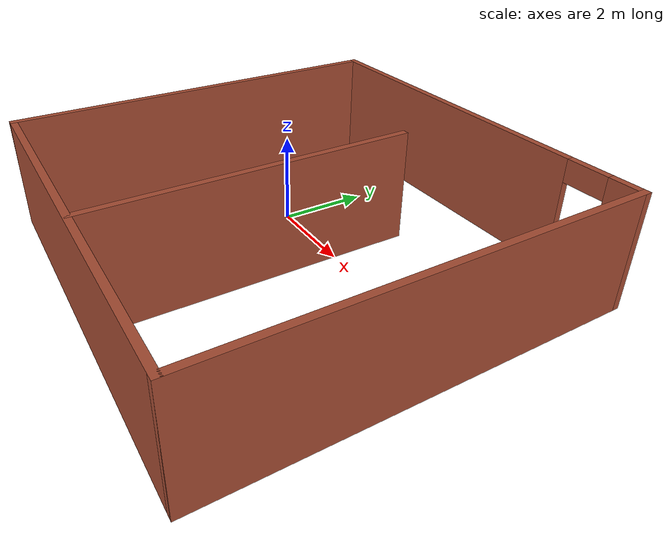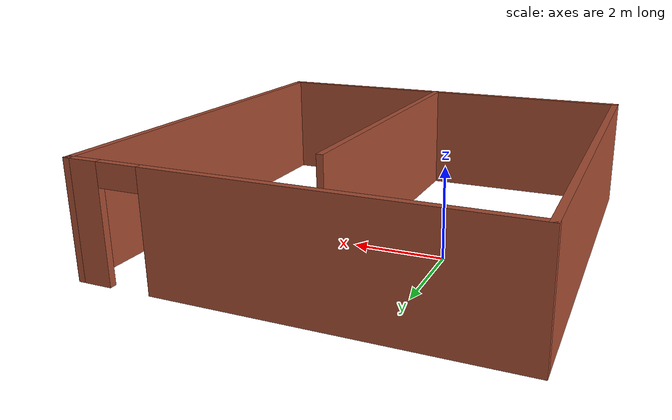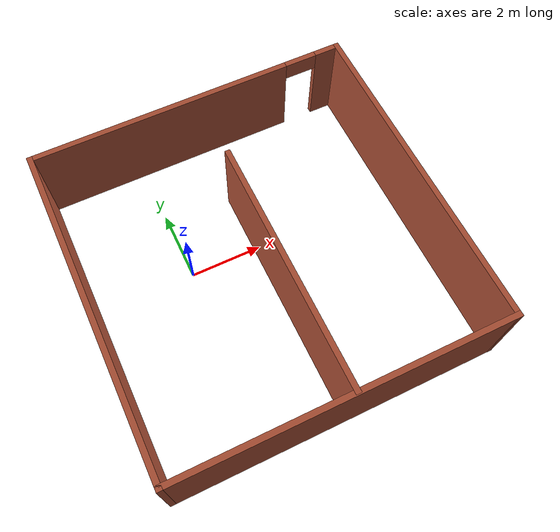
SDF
<?xml version='1.0'?>
<sdf version='1.7'>
  <model name='sim_room1'>
    <pose>1.685 -0.785 0 0 -0 0</pose>
    <link name='Wall_0'>
      <collision name='Wall_0_Collision'>
        <geometry>
          <box>
            <size>9 0.15 2.5</size>
          </box>
        </geometry>
        <pose>0 0 1.25 0 -0 0</pose>
      </collision>
      <visual name='Wall_0_Visual'>
        <pose>0 0 1.25 0 -0 0</pose>
        <geometry>
          <box>
            <size>9 0.15 2.5</size>
          </box>
        </geometry>
        <material>
          <script>
            <uri>file://media/materials/scripts/gazebo.material</uri>
            <name>Gazebo/Bricks</name>
          </script>
          <ambient>1 1 1 1</ambient>
        </material>
        <meta>
          <layer>0</layer>
        </meta>
      </visual>
      <pose>-0 -4.425 0 0 -0 0</pose>
    </link>
    <link name='Wall_1'>
      <collision name='Wall_1_Collision'>
        <geometry>
          <box>
            <size>9 0.15 2.5</size>
          </box>
        </geometry>
        <pose>0 0 1.25 0 -0 0</pose>
      </collision>
      <visual name='Wall_1_Visual'>
        <pose>0 0 1.25 0 -0 0</pose>
        <geometry>
          <box>
            <size>9 0.15 2.5</size>
          </box>
        </geometry>
        <material>
          <script>
            <uri>file://media/materials/scripts/gazebo.material</uri>
            <name>Gazebo/Bricks</name>
          </script>
          <ambient>1 1 1 1</ambient>
        </material>
        <meta>
          <layer>0</layer>
        </meta>
      </visual>
      <pose>4.425 -0 0 0 -0 1.5708</pose>
    </link>
    <link name='Wall_2'>
      <pose>-0 4.425 0 0 -0 3.14159</pose>
      <visual name='Wall_2_Visual_0'>
        <pose>-4.11802 0 1.25 0 -0 0</pose>
        <geometry>
          <box>
            <size>0.763953 0.15 2.5</size>
          </box>
        </geometry>
        <material>
          <script>
            <uri>file://media/materials/scripts/gazebo.material</uri>
            <name>Gazebo/Bricks</name>
          </script>
          <ambient>1 1 1 1</ambient>
        </material>
        <meta>
          <layer>0</layer>
        </meta>
      </visual>
      <collision name='Wall_2_Collision_0'>
        <geometry>
          <box>
            <size>0.763953 0.15 2.5</size>
          </box>
        </geometry>
        <pose>-4.11802 0 1.25 0 -0 0</pose>
      </collision>
      <visual name='Wall_2_Visual_1'>
        <pose>0.831976 0 1.25 0 -0 0</pose>
        <geometry>
          <box>
            <size>7.33605 0.15 2.5</size>
          </box>
        </geometry>
        <material>
          <script>
            <uri>file://media/materials/scripts/gazebo.material</uri>
            <name>Gazebo/Bricks</name>
          </script>
          <ambient>1 1 1 1</ambient>
        </material>
        <meta>
          <layer>0</layer>
        </meta>
      </visual>
      <collision name='Wall_2_Collision_1'>
        <geometry>
          <box>
            <size>7.33605 0.15 2.5</size>
          </box>
        </geometry>
        <pose>0.831976 0 1.25 0 -0 0</pose>
      </collision>
      <visual name='Wall_2_Visual_2'>
        <pose>-3.28605 0 2.25 0 -0 0</pose>
        <geometry>
          <box>
            <size>0.9 0.15 0.5</size>
          </box>
        </geometry>
        <material>
          <script>
            <uri>file://media/materials/scripts/gazebo.material</uri>
            <name>Gazebo/Bricks</name>
          </script>
          <ambient>1 1 1 1</ambient>
        </material>
        <meta>
          <layer>0</layer>
        </meta>
      </visual>
      <collision name='Wall_2_Collision_2'>
        <geometry>
          <box>
            <size>0.9 0.15 0.5</size>
          </box>
        </geometry>
        <pose>-3.28605 0 2.25 0 -0 0</pose>
      </collision>
    </link>
    <link name='Wall_3'>
      <collision name='Wall_3_Collision'>
        <geometry>
          <box>
            <size>9 0.15 2.5</size>
          </box>
        </geometry>
        <pose>0 0 1.25 0 -0 0</pose>
      </collision>
      <visual name='Wall_3_Visual'>
        <pose>0 0 1.25 0 -0 0</pose>
        <geometry>
          <box>
            <size>9 0.15 2.5</size>
          </box>
        </geometry>
        <material>
          <script>
            <uri>file://media/materials/scripts/gazebo.material</uri>
            <name>Gazebo/Bricks</name>
          </script>
          <ambient>1 1 1 1</ambient>
        </material>
        <meta>
          <layer>0</layer>
        </meta>
      </visual>
      <pose>-4.425 -0 0 0 -0 -1.5708</pose>
    </link>
    <link name='Wall_5'>
      <collision name='Wall_5_Collision'>
        <geometry>
          <box>
            <size>7 0.15 2.5</size>
          </box>
        </geometry>
        <pose>0 0 1.25 0 -0 0</pose>
      </collision>
      <visual name='Wall_5_Visual'>
        <pose>0 0 1.25 0 -0 0</pose>
        <geometry>
          <box>
            <size>7 0.15 2.5</size>
          </box>
        </geometry>
        <material>
          <script>
            <uri>file://media/materials/scripts/gazebo.material</uri>
            <name>Gazebo/Bricks</name>
          </script>
          <ambient>1 1 1 1</ambient>
        </material>
        <meta>
          <layer>0</layer>
        </meta>
      </visual>
      <pose>0.232807 -0.973674 0 0 -0 1.5708</pose>
    </link>
    <static>1</static>
  </model>
</sdf>
